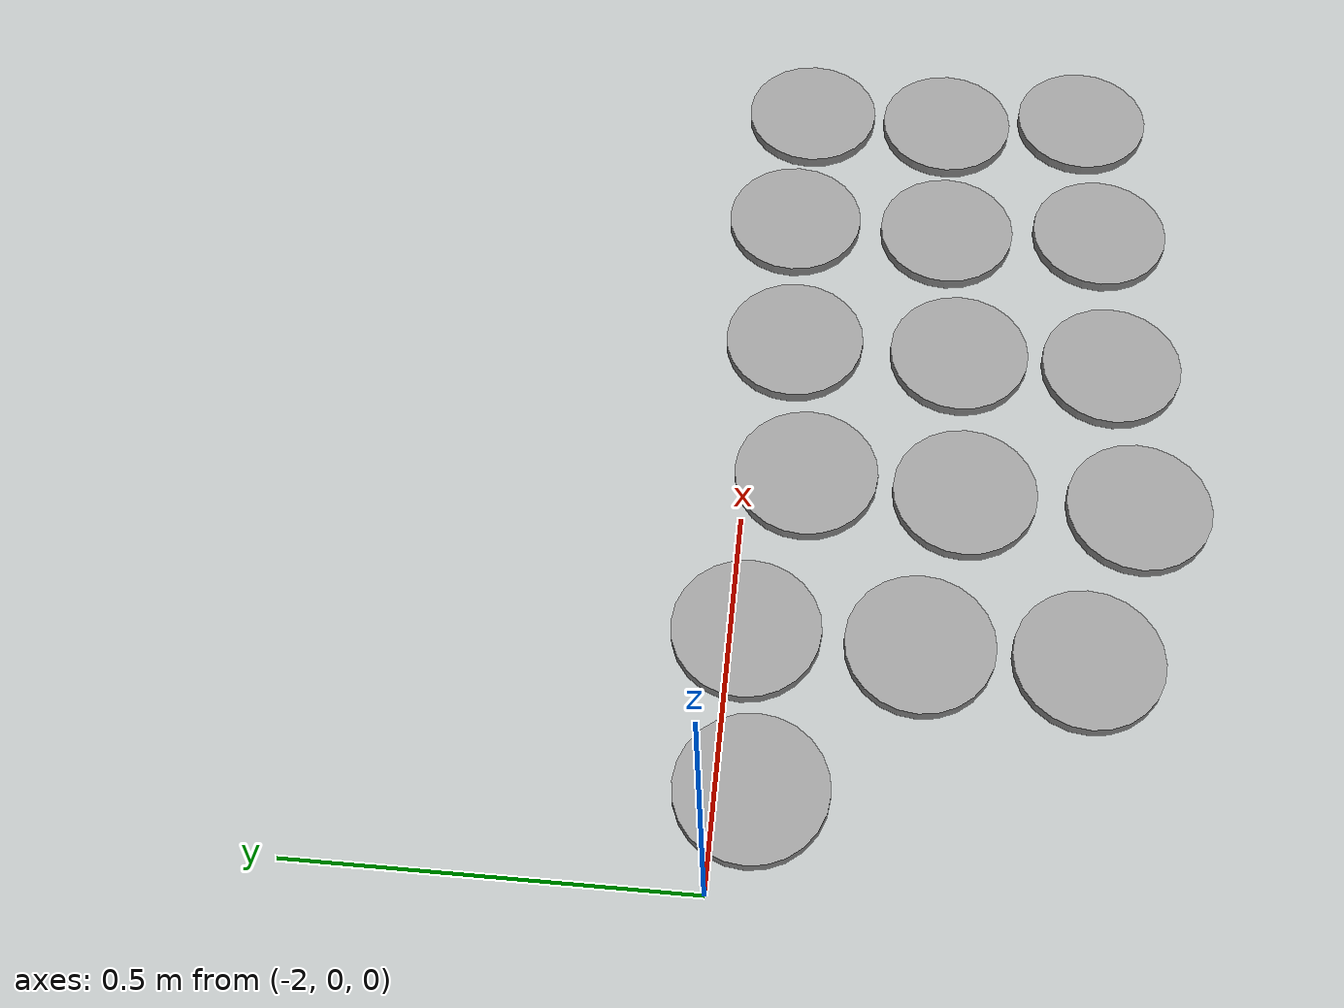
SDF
<sdf version="1.6">
 <world name="default">
  <model name="unit_cylinder_clone_clone_64">
   <pose>-1.87083 -0.043755 0.008111 0 -0 0</pose>
   <link name="link">
    <inertial>
     <mass>1</mass>
     <inertia><ixx>0.145833</ixx><ixy>0</ixy><ixz>0</ixz><iyy>0.145833</iyy><iyz>0</iyz><izz>0.125</izz></inertia>
    </inertial>
    <collision name="collision">
     <geometry><cylinder><radius>0.0950718</radius><length>0.0162339</length></cylinder></geometry>
    </collision>
    <visual name="visual">
     <geometry><cylinder><radius>0.0950718</radius><length>0.0162339</length></cylinder></geometry>
     <material>
      <script><name>Gazebo/Grey</name><uri>file://media/materials/scripts/gazebo.material</uri></script>
     </material>
    </visual>
   </link>
  </model>
  <model name="unit_cylinder_clone_clone_67">
   <pose>-1.66803 -0.447128 0.008111 0 -0 0</pose>
   <link name="link">
    <inertial>
     <mass>1</mass>
     <inertia><ixx>0.145833</ixx><ixy>0</ixy><ixz>0</ixz><iyy>0.145833</iyy><iyz>0</iyz><izz>0.125</izz></inertia>
    </inertial>
    <collision name="collision">
     <geometry><cylinder><radius>0.0950718</radius><length>0.0162339</length></cylinder></geometry>
    </collision>
    <visual name="visual">
     <geometry><cylinder><radius>0.0950718</radius><length>0.0162339</length></cylinder></geometry>
     <material>
      <script><name>Gazebo/Grey</name><uri>file://media/materials/scripts/gazebo.material</uri></script>
     </material>
    </visual>
   </link>
  </model>
  <model name="unit_cylinder_clone_clone_68">
   <pose>-1.66491 -0.238083 0.008111 0 -0 0</pose>
   <link name="link">
    <inertial>
     <mass>1</mass>
     <inertia><ixx>0.145833</ixx><ixy>0</ixy><ixz>0</ixz><iyy>0.145833</iyy><iyz>0</iyz><izz>0.125</izz></inertia>
    </inertial>
    <collision name="collision">
     <geometry><cylinder><radius>0.0950718</radius><length>0.0162339</length></cylinder></geometry>
    </collision>
    <visual name="visual">
     <geometry><cylinder><radius>0.0950718</radius><length>0.0162339</length></cylinder></geometry>
     <material>
      <script><name>Gazebo/Grey</name><uri>file://media/materials/scripts/gazebo.material</uri></script>
     </material>
    </visual>
   </link>
  </model>
  <model name="unit_cylinder_clone_clone_69">
   <pose>-1.66167 -0.020323 0.008111 0 -0 0</pose>
   <link name="link">
    <inertial>
     <mass>1</mass>
     <inertia><ixx>0.145833</ixx><ixy>0</ixy><ixz>0</ixz><iyy>0.145833</iyy><iyz>0</iyz><izz>0.125</izz></inertia>
    </inertial>
    <collision name="collision">
     <geometry><cylinder><radius>0.0950718</radius><length>0.0162339</length></cylinder></geometry>
    </collision>
    <visual name="visual">
     <geometry><cylinder><radius>0.0950718</radius><length>0.0162339</length></cylinder></geometry>
     <material>
      <script><name>Gazebo/Grey</name><uri>file://media/materials/scripts/gazebo.material</uri></script>
     </material>
    </visual>
   </link>
  </model>
  <model name="unit_cylinder_clone_clone_76">
   <pose>-1.42773 -0.080404 0.008111 0 -0 0</pose>
   <link name="link">
    <inertial>
     <mass>1</mass>
     <inertia><ixx>0.145833</ixx><ixy>0</ixy><ixz>0</ixz><iyy>0.145833</iyy><iyz>0</iyz><izz>0.125</izz></inertia>
    </inertial>
    <collision name="collision">
     <geometry><cylinder><radius>0.0950718</radius><length>0.0162339</length></cylinder></geometry>
    </collision>
    <visual name="visual">
     <geometry><cylinder><radius>0.0950718</radius><length>0.0162339</length></cylinder></geometry>
     <material>
      <script><name>Gazebo/Grey</name><uri>file://media/materials/scripts/gazebo.material</uri></script>
     </material>
    </visual>
   </link>
  </model>
  <model name="unit_cylinder_clone_clone_77">
   <pose>-1.43944 -0.290217 0.008111 0 -0 0</pose>
   <link name="link">
    <inertial>
     <mass>1</mass>
     <inertia><ixx>0.145833</ixx><ixy>0</ixy><ixz>0</ixz><iyy>0.145833</iyy><iyz>0</iyz><izz>0.125</izz></inertia>
    </inertial>
    <collision name="collision">
     <geometry><cylinder><radius>0.0950718</radius><length>0.0162339</length></cylinder></geometry>
    </collision>
    <visual name="visual">
     <geometry><cylinder><radius>0.0950718</radius><length>0.0162339</length></cylinder></geometry>
     <material>
      <script><name>Gazebo/Grey</name><uri>file://media/materials/scripts/gazebo.material</uri></script>
     </material>
    </visual>
   </link>
  </model>
  <model name="unit_cylinder_clone_clone_78">
   <pose>-1.4428 -0.517677 0.008111 0 -0 0</pose>
   <link name="link">
    <inertial>
     <mass>1</mass>
     <inertia><ixx>0.145833</ixx><ixy>0</ixy><ixz>0</ixz><iyy>0.145833</iyy><iyz>0</iyz><izz>0.125</izz></inertia>
    </inertial>
    <collision name="collision">
     <geometry><cylinder><radius>0.0950718</radius><length>0.0162339</length></cylinder></geometry>
    </collision>
    <visual name="visual">
     <geometry><cylinder><radius>0.0950718</radius><length>0.0162339</length></cylinder></geometry>
     <material>
      <script><name>Gazebo/Grey</name><uri>file://media/materials/scripts/gazebo.material</uri></script>
     </material>
    </visual>
   </link>
  </model>
  <model name="unit_cylinder_clone_clone_79">
   <pose>-1.21861 -0.488277 0.008108 0 -0 0</pose>
   <link name="link">
    <inertial>
     <mass>1</mass>
     <inertia><ixx>0.145833</ixx><ixy>0</ixy><ixz>0</ixz><iyy>0.145833</iyy><iyz>0</iyz><izz>0.125</izz></inertia>
    </inertial>
    <collision name="collision">
     <geometry><cylinder><radius>0.0950718</radius><length>0.0162339</length></cylinder></geometry>
    </collision>
    <visual name="visual">
     <geometry><cylinder><radius>0.0950718</radius><length>0.0162339</length></cylinder></geometry>
     <material>
      <script><name>Gazebo/Grey</name><uri>file://media/materials/scripts/gazebo.material</uri></script>
     </material>
    </visual>
   </link>
  </model>
  <model name="unit_cylinder_clone_clone_80">
   <pose>-1.21549 -0.27874 0.008109 0 -0 0</pose>
   <link name="link">
    <inertial>
     <mass>1</mass>
     <inertia><ixx>0.145833</ixx><ixy>0</ixy><ixz>0</ixz><iyy>0.145833</iyy><iyz>0</iyz><izz>0.125</izz></inertia>
    </inertial>
    <collision name="collision">
     <geometry><cylinder><radius>0.0950718</radius><length>0.0162339</length></cylinder></geometry>
    </collision>
    <visual name="visual">
     <geometry><cylinder><radius>0.0950718</radius><length>0.0162339</length></cylinder></geometry>
     <material>
      <script><name>Gazebo/Grey</name><uri>file://media/materials/scripts/gazebo.material</uri></script>
     </material>
    </visual>
   </link>
  </model>
  <model name="unit_cylinder_clone_clone_81">
   <pose>-1.21208 -0.050307 0.008114 4e-06 -0 0</pose>
   <link name="link">
    <inertial>
     <mass>1</mass>
     <inertia><ixx>0.145833</ixx><ixy>0</ixy><ixz>0</ixz><iyy>0.145833</iyy><iyz>0</iyz><izz>0.125</izz></inertia>
    </inertial>
    <collision name="collision">
     <geometry><cylinder><radius>0.0950718</radius><length>0.0162339</length></cylinder></geometry>
    </collision>
    <visual name="visual">
     <geometry><cylinder><radius>0.0950718</radius><length>0.0162339</length></cylinder></geometry>
     <material>
      <script><name>Gazebo/Grey</name><uri>file://media/materials/scripts/gazebo.material</uri></script>
     </material>
    </visual>
   </link>
  </model>
  <model name="unit_cylinder_clone_clone_88">
   <pose>-0.994917 -0.036304 0.008108 0 -0 0</pose>
   <link name="link">
    <inertial>
     <mass>1</mass>
     <inertia><ixx>0.145833</ixx><ixy>0</ixy><ixz>0</ixz><iyy>0.145833</iyy><iyz>0</iyz><izz>0.125</izz></inertia>
    </inertial>
    <collision name="collision">
     <geometry><cylinder><radius>0.0950718</radius><length>0.0162339</length></cylinder></geometry>
    </collision>
    <visual name="visual">
     <geometry><cylinder><radius>0.0950718</radius><length>0.0162339</length></cylinder></geometry>
     <material>
      <script><name>Gazebo/Grey</name><uri>file://media/materials/scripts/gazebo.material</uri></script>
     </material>
    </visual>
   </link>
  </model>
  <model name="unit_cylinder_clone_clone_89">
   <pose>-0.998206 -0.256859 0.008117 0 -0 0</pose>
   <link name="link">
    <inertial>
     <mass>1</mass>
     <inertia><ixx>0.145833</ixx><ixy>0</ixy><ixz>0</ixz><iyy>0.145833</iyy><iyz>0</iyz><izz>0.125</izz></inertia>
    </inertial>
    <collision name="collision">
     <geometry><cylinder><radius>0.0950718</radius><length>0.0162339</length></cylinder></geometry>
    </collision>
    <visual name="visual">
     <geometry><cylinder><radius>0.0950718</radius><length>0.0162339</length></cylinder></geometry>
     <material>
      <script><name>Gazebo/Grey</name><uri>file://media/materials/scripts/gazebo.material</uri></script>
     </material>
    </visual>
   </link>
  </model>
  <model name="unit_cylinder_clone_clone_90">
   <pose>-0.98403 -0.477852 0.008108 0 -0 0</pose>
   <link name="link">
    <inertial>
     <mass>1</mass>
     <inertia><ixx>0.145833</ixx><ixy>0</ixy><ixz>0</ixz><iyy>0.145833</iyy><iyz>0</iyz><izz>0.125</izz></inertia>
    </inertial>
    <collision name="collision">
     <geometry><cylinder><radius>0.0950718</radius><length>0.0162339</length></cylinder></geometry>
    </collision>
    <visual name="visual">
     <geometry><cylinder><radius>0.0950718</radius><length>0.0162339</length></cylinder></geometry>
     <material>
      <script><name>Gazebo/Grey</name><uri>file://media/materials/scripts/gazebo.material</uri></script>
     </material>
    </visual>
   </link>
  </model>
  <model name="unit_cylinder_clone_clone_91">
   <pose>-0.764783 -0.456706 0.008108 0 -0 0</pose>
   <link name="link">
    <inertial>
     <mass>1</mass>
     <inertia><ixx>0.145833</ixx><ixy>0</ixy><ixz>0</ixz><iyy>0.145833</iyy><iyz>0</iyz><izz>0.125</izz></inertia>
    </inertial>
    <collision name="collision">
     <geometry><cylinder><radius>0.0950718</radius><length>0.0162339</length></cylinder></geometry>
    </collision>
    <visual name="visual">
     <geometry><cylinder><radius>0.0950718</radius><length>0.0162339</length></cylinder></geometry>
     <material>
      <script><name>Gazebo/Grey</name><uri>file://media/materials/scripts/gazebo.material</uri></script>
     </material>
    </visual>
   </link>
  </model>
  <model name="unit_cylinder_clone_clone_92">
   <pose>-0.788122 -0.252339 0.008108 0 -0 0</pose>
   <link name="link">
    <inertial>
     <mass>1</mass>
     <inertia><ixx>0.145833</ixx><ixy>0</ixy><ixz>0</ixz><iyy>0.145833</iyy><iyz>0</iyz><izz>0.125</izz></inertia>
    </inertial>
    <collision name="collision">
     <geometry><cylinder><radius>0.0950718</radius><length>0.0162339</length></cylinder></geometry>
    </collision>
    <visual name="visual">
     <geometry><cylinder><radius>0.0950718</radius><length>0.0162339</length></cylinder></geometry>
     <material>
      <script><name>Gazebo/Grey</name><uri>file://media/materials/scripts/gazebo.material</uri></script>
     </material>
    </visual>
   </link>
  </model>
  <model name="unit_cylinder_clone_clone_93">
   <pose>-0.785106 -0.048617 0.008108 0 -0 0</pose>
   <link name="link">
    <inertial>
     <mass>1</mass>
     <inertia><ixx>0.145833</ixx><ixy>0</ixy><ixz>0</ixz><iyy>0.145833</iyy><iyz>0</iyz><izz>0.125</izz></inertia>
    </inertial>
    <collision name="collision">
     <geometry><cylinder><radius>0.0950718</radius><length>0.0162339</length></cylinder></geometry>
    </collision>
    <visual name="visual">
     <geometry><cylinder><radius>0.0950718</radius><length>0.0162339</length></cylinder></geometry>
     <material>
      <script><name>Gazebo/Grey</name><uri>file://media/materials/scripts/gazebo.material</uri></script>
     </material>
    </visual>
   </link>
  </model>
 </world>
</sdf>
